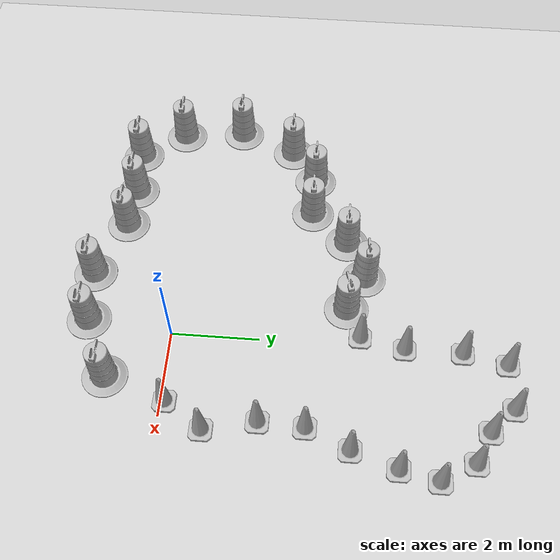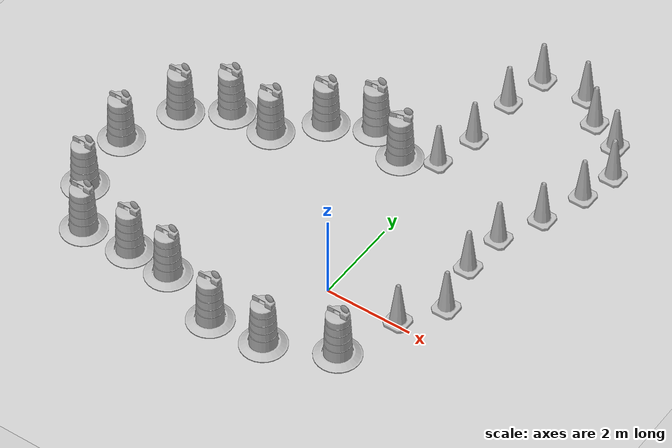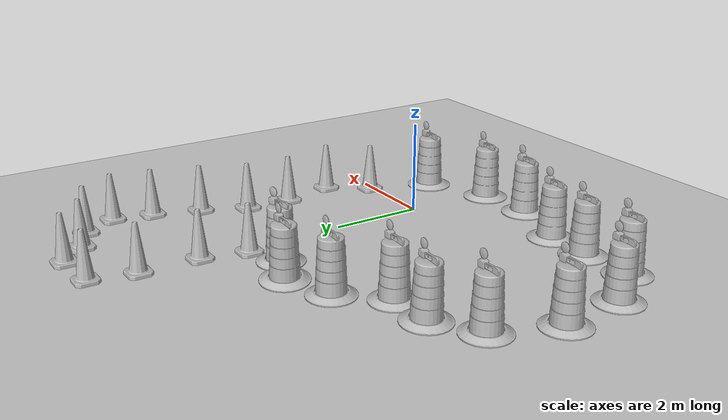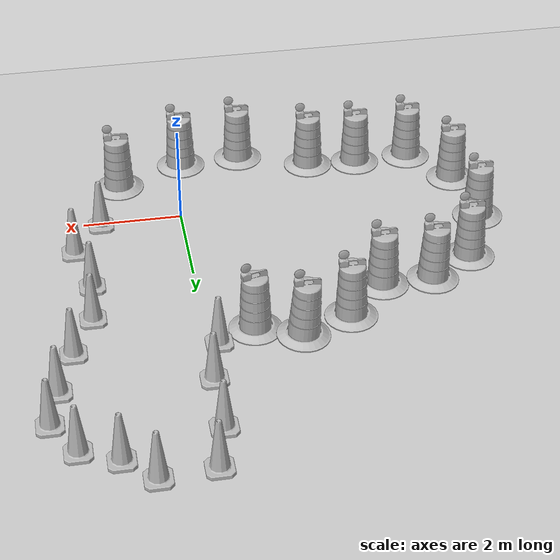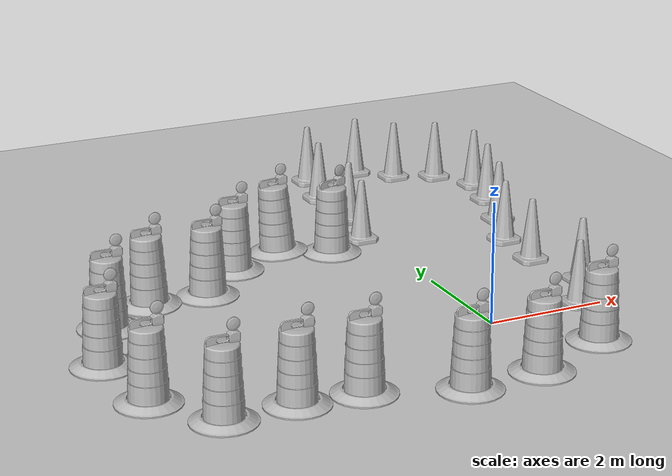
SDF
<sdf version="1.7">
 <world name="default">
  <light name="sun" type="directional">
   <pose>0 0 10 0 -0 0</pose>
   <diffuse>0.8 0.8 0.8 1</diffuse>
   <specular>0.2 0.2 0.2 1</specular>
   <attenuation>
    <range>1000</range>
    <constant>0.9</constant>
    <linear>0.01</linear>
    <quadratic>0.001</quadratic>
   </attenuation>
   <direction>-0.5 0.1 -0.9</direction>
   <spot><inner_angle>0</inner_angle><outer_angle>0</outer_angle><falloff>0</falloff></spot>
  </light>
  <model name="ground_plane">
   <static>1</static>
   <link name="link">
    <collision name="collision">
     <geometry><plane><normal>0 0 1</normal><size>100 100</size></plane></geometry>
     <surface>
      <contact><collide_bitmask>65535</collide_bitmask></contact>
      <friction><ode><mu>100</mu><mu2>50</mu2></ode></friction>
     </surface>
    </collision>
    <visual name="visual">
     <cast_shadows>0</cast_shadows>
     <geometry><plane><normal>0 0 1</normal><size>100 100</size></plane></geometry>
     <material>
      <script><uri>file://media/materials/scripts/gazebo.material</uri><name>Gazebo/Grey</name></script>
     </material>
    </visual>
   </link>
  </model>
  <gravity>0 0 -9.8</gravity>
  <magnetic_field>6e-06 2.3e-05 -4.2e-05</magnetic_field>
  <atmosphere type="adiabatic"/>
  <physics type="ode">
   <max_step_size>0.001</max_step_size>
   <real_time_factor>1</real_time_factor>
   <real_time_update_rate>1000</real_time_update_rate>
  </physics>
  <scene><ambient>0.4 0.4 0.4 1</ambient><background>0.7 0.7 0.7 1</background><shadows>1</shadows></scene>
  <audio><device>default</device></audio>
  <spherical_coordinates>
   <surface_model>EARTH_WGS84</surface_model>
   <latitude_deg>0</latitude_deg>
   <longitude_deg>0</longitude_deg>
   <elevation>0</elevation>
   <heading_deg>0</heading_deg>
  </spherical_coordinates>
  <model name="Construction Cone">
   <link name="link">
    <collision name="collision">
     <geometry>
      <mesh><scale>10 10 10</scale><uri>model://construction_cone/meshes/construction_cone.dae</uri></mesh>
     </geometry>
    </collision>
    <visual name="visual">
     <geometry>
      <mesh><scale>10 10 10</scale><uri>model://construction_cone/meshes/construction_cone.dae</uri></mesh>
     </geometry>
    </visual>
    <inertial>
     <inertia><ixx>1</ixx><ixy>0</ixy><ixz>0</ixz><iyy>1</iyy><iyz>0</iyz><izz>1</izz></inertia>
     <mass>1</mass>
    </inertial>
   </link>
   <pose>1.6477 0.098338 -0 1e-06 -0 0</pose>
  </model>
  <model name="Construction Barrel">
   <link name="link">
    <inertial>
     <pose>0 0 0.4 0 -0 0</pose>
     <mass>500</mass>
     <inertia><ixx>51.2096</ixx><iyy>51.2096</iyy><izz>25</izz><ixy>0</ixy><ixz>0</ixz><iyz>0</iyz></inertia>
    </inertial>
    <collision name="collision">
     <geometry><mesh><uri>model://construction_barrel/meshes/construction_barrel.dae</uri></mesh></geometry>
    </collision>
    <visual name="visual">
     <geometry><mesh><uri>model://construction_barrel/meshes/construction_barrel.dae</uri></mesh></geometry>
    </visual>
   </link>
   <pose>1.1525 -1.29542 -0 1e-06 -1e-06 -3.2e-05</pose>
  </model>
  <model name="Construction Barrel_clone">
   <link name="link">
    <inertial>
     <pose>0 0 0.4 0 -0 0</pose>
     <mass>500</mass>
     <inertia><ixx>51.2096</ixx><iyy>51.2096</iyy><izz>25</izz><ixy>0</ixy><ixz>0</ixz><iyz>0</iyz></inertia>
    </inertial>
    <collision name="collision">
     <geometry><mesh><uri>model://construction_barrel/meshes/construction_barrel.dae</uri></mesh></geometry>
    </collision>
    <visual name="visual">
     <geometry><mesh><uri>model://construction_barrel/meshes/construction_barrel.dae</uri></mesh></geometry>
    </visual>
   </link>
   <pose>-0.227376 -1.91904 -2e-06 0 7e-06 -2.7e-05</pose>
  </model>
  <model name="Construction Barrel_clone_0">
   <link name="link">
    <inertial>
     <pose>0 0 0.4 0 -0 0</pose>
     <mass>500</mass>
     <inertia><ixx>51.2096</ixx><iyy>51.2096</iyy><izz>25</izz><ixy>0</ixy><ixz>0</ixz><iyz>0</iyz></inertia>
    </inertial>
    <collision name="collision">
     <geometry><mesh><uri>model://construction_barrel/meshes/construction_barrel.dae</uri></mesh></geometry>
    </collision>
    <visual name="visual">
     <geometry><mesh><uri>model://construction_barrel/meshes/construction_barrel.dae</uri></mesh></geometry>
    </visual>
   </link>
   <pose>-1.47934 -2.00851 -2e-06 7e-06 -4e-06 -2.9e-05</pose>
  </model>
  <model name="Construction Barrel_clone_1">
   <link name="link">
    <inertial>
     <pose>0 0 0.4 0 -0 0</pose>
     <mass>500</mass>
     <inertia><ixx>51.2096</ixx><iyy>51.2096</iyy><izz>25</izz><ixy>0</ixy><ixz>0</ixz><iyz>0</iyz></inertia>
    </inertial>
    <collision name="collision">
     <geometry><mesh><uri>model://construction_barrel/meshes/construction_barrel.dae</uri></mesh></geometry>
    </collision>
    <visual name="visual">
     <geometry><mesh><uri>model://construction_barrel/meshes/construction_barrel.dae</uri></mesh></geometry>
    </visual>
   </link>
   <pose>-2.92651 -1.47911 -0 0 0 -2.9e-05</pose>
  </model>
  <model name="Construction Barrel_clone_2">
   <link name="link">
    <inertial>
     <pose>0 0 0.4 0 -0 0</pose>
     <mass>500</mass>
     <inertia><ixx>51.2096</ixx><iyy>51.2096</iyy><izz>25</izz><ixy>0</ixy><ixz>0</ixz><iyz>0</iyz></inertia>
    </inertial>
    <collision name="collision">
     <geometry><mesh><uri>model://construction_barrel/meshes/construction_barrel.dae</uri></mesh></geometry>
    </collision>
    <visual name="visual">
     <geometry><mesh><uri>model://construction_barrel/meshes/construction_barrel.dae</uri></mesh></geometry>
    </visual>
   </link>
   <pose>-3.94715 -1.40583 -2e-06 7e-06 -4e-06 -2.9e-05</pose>
  </model>
  <model name="Construction Barrel_clone_3">
   <link name="link">
    <inertial>
     <pose>0 0 0.4 0 -0 0</pose>
     <mass>500</mass>
     <inertia><ixx>51.2096</ixx><iyy>51.2096</iyy><izz>25</izz><ixy>0</ixy><ixz>0</ixz><iyz>0</iyz></inertia>
    </inertial>
    <collision name="collision">
     <geometry><mesh><uri>model://construction_barrel/meshes/construction_barrel.dae</uri></mesh></geometry>
    </collision>
    <visual name="visual">
     <geometry><mesh><uri>model://construction_barrel/meshes/construction_barrel.dae</uri></mesh></geometry>
    </visual>
   </link>
   <pose>-5.09034 -1.46021 -0 0 0 -2.5e-05</pose>
  </model>
  <model name="Construction Barrel_clone_4">
   <link name="link">
    <inertial>
     <pose>0 0 0.4 0 -0 0</pose>
     <mass>500</mass>
     <inertia><ixx>51.2096</ixx><iyy>51.2096</iyy><izz>25</izz><ixy>0</ixy><ixz>0</ixz><iyz>0</iyz></inertia>
    </inertial>
    <collision name="collision">
     <geometry><mesh><uri>model://construction_barrel/meshes/construction_barrel.dae</uri></mesh></geometry>
    </collision>
    <visual name="visual">
     <geometry><mesh><uri>model://construction_barrel/meshes/construction_barrel.dae</uri></mesh></geometry>
    </visual>
   </link>
   <pose>-5.83094 -0.442983 -0 0 0 -2.6e-05</pose>
  </model>
  <model name="Construction Barrel_clone_5">
   <link name="link">
    <inertial>
     <pose>0 0 0.4 0 -0 0</pose>
     <mass>500</mass>
     <inertia><ixx>51.2096</ixx><iyy>51.2096</iyy><izz>25</izz><ixy>0</ixy><ixz>0</ixz><iyz>0</iyz></inertia>
    </inertial>
    <collision name="collision">
     <geometry><mesh><uri>model://construction_barrel/meshes/construction_barrel.dae</uri></mesh></geometry>
    </collision>
    <visual name="visual">
     <geometry><mesh><uri>model://construction_barrel/meshes/construction_barrel.dae</uri></mesh></geometry>
    </visual>
   </link>
   <pose>-6.00818 1.03765 -2e-06 7e-06 -2e-06 -3e-05</pose>
  </model>
  <model name="Construction Barrel_clone_6">
   <link name="link">
    <inertial>
     <pose>0 0 0.4 0 -0 0</pose>
     <mass>500</mass>
     <inertia><ixx>51.2096</ixx><iyy>51.2096</iyy><izz>25</izz><ixy>0</ixy><ixz>0</ixz><iyz>0</iyz></inertia>
    </inertial>
    <collision name="collision">
     <geometry><mesh><uri>model://construction_barrel/meshes/construction_barrel.dae</uri></mesh></geometry>
    </collision>
    <visual name="visual">
     <geometry><mesh><uri>model://construction_barrel/meshes/construction_barrel.dae</uri></mesh></geometry>
    </visual>
   </link>
   <pose>-5.45944 2.37741 -1e-06 5e-06 -3e-06 -2.8e-05</pose>
  </model>
  <model name="Construction Cone_clone">
   <link name="link">
    <collision name="collision">
     <geometry>
      <mesh><scale>10 10 10</scale><uri>model://construction_cone/meshes/construction_cone.dae</uri></mesh>
     </geometry>
    </collision>
    <visual name="visual">
     <geometry>
      <mesh><scale>10 10 10</scale><uri>model://construction_cone/meshes/construction_cone.dae</uri></mesh>
     </geometry>
    </visual>
    <inertial>
     <inertia><ixx>1</ixx><ixy>0</ixy><ixz>0</ixz><iyy>1</iyy><iyz>0</iyz><izz>1</izz></inertia>
     <mass>1</mass>
    </inertial>
   </link>
   <pose>2.2399 0.961198 -0 0 -0 0</pose>
  </model>
  <model name="Construction Cone_clone_0">
   <link name="link">
    <collision name="collision">
     <geometry>
      <mesh><scale>10 10 10</scale><uri>model://construction_cone/meshes/construction_cone.dae</uri></mesh>
     </geometry>
    </collision>
    <visual name="visual">
     <geometry>
      <mesh><scale>10 10 10</scale><uri>model://construction_cone/meshes/construction_cone.dae</uri></mesh>
     </geometry>
    </visual>
    <inertial>
     <inertia><ixx>1</ixx><ixy>0</ixy><ixz>0</ixz><iyy>1</iyy><iyz>0</iyz><izz>1</izz></inertia>
     <mass>1</mass>
    </inertial>
   </link>
   <pose>1.97956 2.13686 -0 0 -0 0</pose>
  </model>
  <model name="Construction Cone_clone_1">
   <link name="link">
    <collision name="collision">
     <geometry>
      <mesh><scale>10 10 10</scale><uri>model://construction_cone/meshes/construction_cone.dae</uri></mesh>
     </geometry>
    </collision>
    <visual name="visual">
     <geometry>
      <mesh><scale>10 10 10</scale><uri>model://construction_cone/meshes/construction_cone.dae</uri></mesh>
     </geometry>
    </visual>
    <inertial>
     <inertia><ixx>1</ixx><ixy>0</ixy><ixz>0</ixz><iyy>1</iyy><iyz>0</iyz><izz>1</izz></inertia>
     <mass>1</mass>
    </inertial>
   </link>
   <pose>2.04217 3.15544 -0 0 1e-06 0</pose>
  </model>
  <model name="Construction Cone_clone_2">
   <link name="link">
    <collision name="collision">
     <geometry>
      <mesh><scale>10 10 10</scale><uri>model://construction_cone/meshes/construction_cone.dae</uri></mesh>
     </geometry>
    </collision>
    <visual name="visual">
     <geometry>
      <mesh><scale>10 10 10</scale><uri>model://construction_cone/meshes/construction_cone.dae</uri></mesh>
     </geometry>
    </visual>
    <inertial>
     <inertia><ixx>1</ixx><ixy>0</ixy><ixz>0</ixz><iyy>1</iyy><iyz>0</iyz><izz>1</izz></inertia>
     <mass>1</mass>
    </inertial>
   </link>
   <pose>2.47168 4.12654 -0 0 -1e-06 0</pose>
  </model>
  <model name="Construction Cone_clone_3">
   <link name="link">
    <collision name="collision">
     <geometry>
      <mesh><scale>10 10 10</scale><uri>model://construction_cone/meshes/construction_cone.dae</uri></mesh>
     </geometry>
    </collision>
    <visual name="visual">
     <geometry>
      <mesh><scale>10 10 10</scale><uri>model://construction_cone/meshes/construction_cone.dae</uri></mesh>
     </geometry>
    </visual>
    <inertial>
     <inertia><ixx>1</ixx><ixy>0</ixy><ixz>0</ixz><iyy>1</iyy><iyz>0</iyz><izz>1</izz></inertia>
     <mass>1</mass>
    </inertial>
   </link>
   <pose>2.81029 5.14531 -0 0 -1e-06 0</pose>
  </model>
  <model name="Construction Cone_clone_4">
   <link name="link">
    <collision name="collision">
     <geometry>
      <mesh><scale>10 10 10</scale><uri>model://construction_cone/meshes/construction_cone.dae</uri></mesh>
     </geometry>
    </collision>
    <visual name="visual">
     <geometry>
      <mesh><scale>10 10 10</scale><uri>model://construction_cone/meshes/construction_cone.dae</uri></mesh>
     </geometry>
    </visual>
    <inertial>
     <inertia><ixx>1</ixx><ixy>0</ixy><ixz>0</ixz><iyy>1</iyy><iyz>0</iyz><izz>1</izz></inertia>
     <mass>1</mass>
    </inertial>
   </link>
   <pose>3 6 -0 0 -1e-06 0</pose>
  </model>
  <model name="Construction Cone_clone_5">
   <link name="link">
    <collision name="collision">
     <geometry>
      <mesh><scale>10 10 10</scale><uri>model://construction_cone/meshes/construction_cone.dae</uri></mesh>
     </geometry>
    </collision>
    <visual name="visual">
     <geometry>
      <mesh><scale>10 10 10</scale><uri>model://construction_cone/meshes/construction_cone.dae</uri></mesh>
     </geometry>
    </visual>
    <inertial>
     <inertia><ixx>1</ixx><ixy>0</ixy><ixz>0</ixz><iyy>1</iyy><iyz>0</iyz><izz>1</izz></inertia>
     <mass>1</mass>
    </inertial>
   </link>
   <pose>2.56692 6.75283 -0 1e-06 -0 0</pose>
  </model>
  <model name="Construction Cone_clone_6">
   <link name="link">
    <collision name="collision">
     <geometry>
      <mesh><scale>10 10 10</scale><uri>model://construction_cone/meshes/construction_cone.dae</uri></mesh>
     </geometry>
    </collision>
    <visual name="visual">
     <geometry>
      <mesh><scale>10 10 10</scale><uri>model://construction_cone/meshes/construction_cone.dae</uri></mesh>
     </geometry>
    </visual>
    <inertial>
     <inertia><ixx>1</ixx><ixy>0</ixy><ixz>0</ixz><iyy>1</iyy><iyz>0</iyz><izz>1</izz></inertia>
     <mass>1</mass>
    </inertial>
   </link>
   <pose>1.8557 7.07713 -0 1e-06 -0 0</pose>
  </model>
  <model name="Construction Cone_clone_7">
   <link name="link">
    <collision name="collision">
     <geometry>
      <mesh><scale>10 10 10</scale><uri>model://construction_cone/meshes/construction_cone.dae</uri></mesh>
     </geometry>
    </collision>
    <visual name="visual">
     <geometry>
      <mesh><scale>10 10 10</scale><uri>model://construction_cone/meshes/construction_cone.dae</uri></mesh>
     </geometry>
    </visual>
    <inertial>
     <inertia><ixx>1</ixx><ixy>0</ixy><ixz>0</ixz><iyy>1</iyy><iyz>0</iyz><izz>1</izz></inertia>
     <mass>1</mass>
    </inertial>
   </link>
   <pose>1.29694 7.61567 -1e-06 4e-06 -1e-06 0</pose>
  </model>
  <model name="Construction Cone_clone_8">
   <link name="link">
    <collision name="collision">
     <geometry>
      <mesh><scale>10 10 10</scale><uri>model://construction_cone/meshes/construction_cone.dae</uri></mesh>
     </geometry>
    </collision>
    <visual name="visual">
     <geometry>
      <mesh><scale>10 10 10</scale><uri>model://construction_cone/meshes/construction_cone.dae</uri></mesh>
     </geometry>
    </visual>
    <inertial>
     <inertia><ixx>1</ixx><ixy>0</ixy><ixz>0</ixz><iyy>1</iyy><iyz>0</iyz><izz>1</izz></inertia>
     <mass>1</mass>
    </inertial>
   </link>
   <pose>0.257022 7.52741 0 -0 -0 -0</pose>
  </model>
  <model name="Construction Cone_clone_9">
   <link name="link">
    <collision name="collision">
     <geometry>
      <mesh><scale>10 10 10</scale><uri>model://construction_cone/meshes/construction_cone.dae</uri></mesh>
     </geometry>
    </collision>
    <visual name="visual">
     <geometry>
      <mesh><scale>10 10 10</scale><uri>model://construction_cone/meshes/construction_cone.dae</uri></mesh>
     </geometry>
    </visual>
    <inertial>
     <inertia><ixx>1</ixx><ixy>0</ixy><ixz>0</ixz><iyy>1</iyy><iyz>0</iyz><izz>1</izz></inertia>
     <mass>1</mass>
    </inertial>
   </link>
   <pose>0.039448 6.54406 -0 0 -1e-06 0</pose>
  </model>
  <model name="Construction Cone_clone_10">
   <link name="link">
    <collision name="collision">
     <geometry>
      <mesh><scale>10 10 10</scale><uri>model://construction_cone/meshes/construction_cone.dae</uri></mesh>
     </geometry>
    </collision>
    <visual name="visual">
     <geometry>
      <mesh><scale>10 10 10</scale><uri>model://construction_cone/meshes/construction_cone.dae</uri></mesh>
     </geometry>
    </visual>
    <inertial>
     <inertia><ixx>1</ixx><ixy>0</ixy><ixz>0</ixz><iyy>1</iyy><iyz>0</iyz><izz>1</izz></inertia>
     <mass>1</mass>
    </inertial>
   </link>
   <pose>0.032686 5.25061 -9e-06 -3e-06 0 0</pose>
  </model>
  <model name="Construction Cone_clone_11">
   <link name="link">
    <collision name="collision">
     <geometry>
      <mesh><scale>10 10 10</scale><uri>model://construction_cone/meshes/construction_cone.dae</uri></mesh>
     </geometry>
    </collision>
    <visual name="visual">
     <geometry>
      <mesh><scale>10 10 10</scale><uri>model://construction_cone/meshes/construction_cone.dae</uri></mesh>
     </geometry>
    </visual>
    <inertial>
     <inertia><ixx>1</ixx><ixy>0</ixy><ixz>0</ixz><iyy>1</iyy><iyz>0</iyz><izz>1</izz></inertia>
     <mass>1</mass>
    </inertial>
   </link>
   <pose>-0.194838 4.25552 -0 0 -1e-06 0.002137</pose>
  </model>
  <model name="Construction Barrel_clone_6_clone">
   <link name="link">
    <inertial>
     <pose>0 0 0.4 0 -0 0</pose>
     <mass>500</mass>
     <inertia><ixx>51.2096</ixx><iyy>51.2096</iyy><izz>25</izz><ixy>0</ixy><ixz>0</ixz><iyz>0</iyz></inertia>
    </inertial>
    <collision name="collision">
     <geometry><mesh><uri>model://construction_barrel/meshes/construction_barrel.dae</uri></mesh></geometry>
    </collision>
    <visual name="visual">
     <geometry><mesh><uri>model://construction_barrel/meshes/construction_barrel.dae</uri></mesh></geometry>
    </visual>
   </link>
   <pose>-4.56438 2.99472 0.013502 0.00344 -0.026482 -0.003383</pose>
  </model>
  <model name="Construction Barrel_clone_6_clone_0">
   <link name="link">
    <inertial>
     <pose>0 0 0.4 0 -0 0</pose>
     <mass>500</mass>
     <inertia><ixx>51.2096</ixx><iyy>51.2096</iyy><izz>25</izz><ixy>0</ixy><ixz>0</ixz><iyz>0</iyz></inertia>
    </inertial>
    <collision name="collision">
     <geometry><mesh><uri>model://construction_barrel/meshes/construction_barrel.dae</uri></mesh></geometry>
    </collision>
    <visual name="visual">
     <geometry><mesh><uri>model://construction_barrel/meshes/construction_barrel.dae</uri></mesh></geometry>
    </visual>
   </link>
   <pose>-3.56822 2.99057 -1.4e-05 0 -1.2e-05 0.02015</pose>
  </model>
  <model name="Construction Barrel_clone_6_clone_1">
   <link name="link">
    <inertial>
     <pose>0 0 0.4 0 -0 0</pose>
     <mass>500</mass>
     <inertia><ixx>51.2096</ixx><iyy>51.2096</iyy><izz>25</izz><ixy>0</ixy><ixz>0</ixz><iyz>0</iyz></inertia>
    </inertial>
    <collision name="collision">
     <geometry><mesh><uri>model://construction_barrel/meshes/construction_barrel.dae</uri></mesh></geometry>
    </collision>
    <visual name="visual">
     <geometry><mesh><uri>model://construction_barrel/meshes/construction_barrel.dae</uri></mesh></geometry>
    </visual>
   </link>
   <pose>-2.76218 3.85339 -0 0 0 -2.7e-05</pose>
  </model>
  <model name="Construction Barrel_clone_6_clone_2">
   <link name="link">
    <inertial>
     <pose>0 0 0.4 0 -0 0</pose>
     <mass>500</mass>
     <inertia><ixx>51.2096</ixx><iyy>51.2096</iyy><izz>25</izz><ixy>0</ixy><ixz>0</ixz><iyz>0</iyz></inertia>
    </inertial>
    <collision name="collision">
     <geometry><mesh><uri>model://construction_barrel/meshes/construction_barrel.dae</uri></mesh></geometry>
    </collision>
    <visual name="visual">
     <geometry><mesh><uri>model://construction_barrel/meshes/construction_barrel.dae</uri></mesh></geometry>
    </visual>
   </link>
   <pose>-1.76824 4.29164 0.031351 -0.031029 -0.053152 0.041405</pose>
  </model>
  <model name="Construction Barrel_clone_6_clone_3">
   <link name="link">
    <inertial>
     <pose>0 0 0.4 0 -0 0</pose>
     <mass>500</mass>
     <inertia><ixx>51.2096</ixx><iyy>51.2096</iyy><izz>25</izz><ixy>0</ixy><ixz>0</ixz><iyz>0</iyz></inertia>
    </inertial>
    <collision name="collision">
     <geometry><mesh><uri>model://construction_barrel/meshes/construction_barrel.dae</uri></mesh></geometry>
    </collision>
    <visual name="visual">
     <geometry><mesh><uri>model://construction_barrel/meshes/construction_barrel.dae</uri></mesh></geometry>
    </visual>
   </link>
   <pose>-0.923218 3.9157 0 0 -0 0.242436</pose>
  </model>
 </world>
</sdf>
